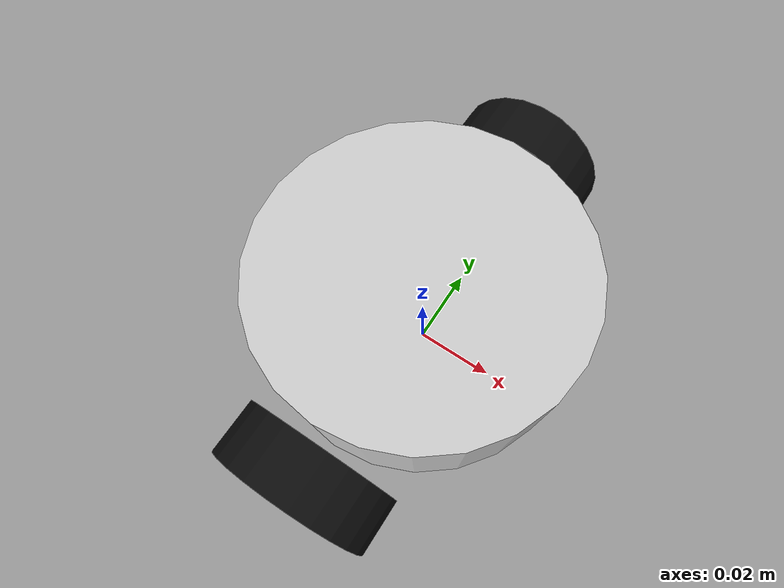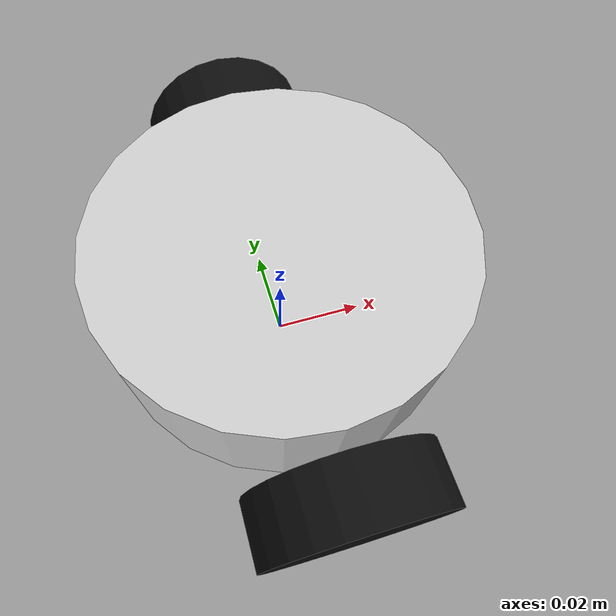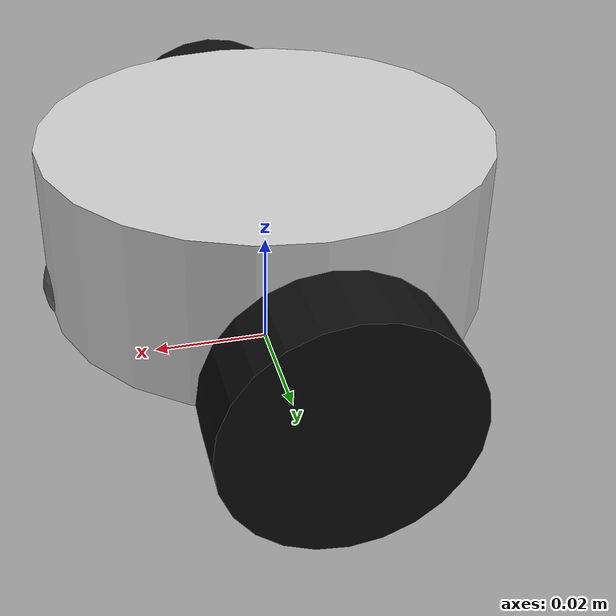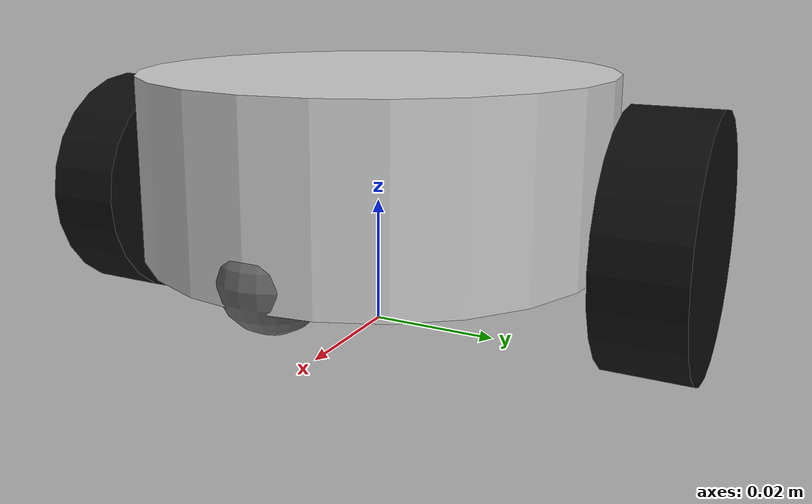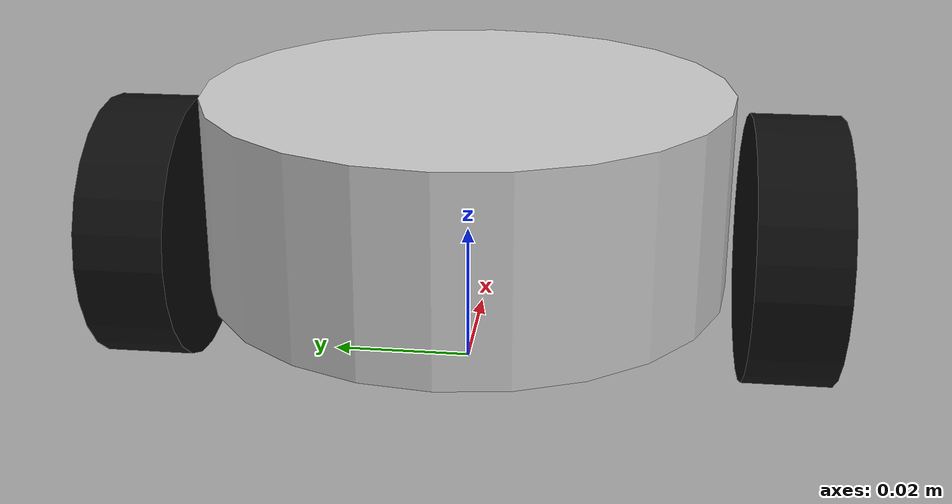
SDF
<?xml version="1.0"?>
<sdf version="1.6">
  <model name="mini_educational_robot">

    <!-- ═══════════════════════════════════════════════════════════
         BASE CHASSIS
    ═══════════════════════════════════════════════════════════ -->
    <link name="base_link">
      <pose>0 0 0.027 0 0 0</pose>

      <inertial>
        <mass>0.175</mass>
        <inertia>
          <ixx>0.000073</ixx>
          <ixy>0</ixy>
          <ixz>0</ixz>
          <iyy>0.000073</iyy>
          <iyz>0</iyz>
          <izz>0.000120</izz>
        </inertia>
      </inertial>

      <collision name="chassis_collision">
        <geometry>
          <cylinder>
            <radius>0.037</radius>
            <length>0.028</length>
          </cylinder>
        </geometry>
      </collision>

      <visual name="chassis_visual">
        <geometry>
          <cylinder>
            <radius>0.037</radius>
            <length>0.028</length>
          </cylinder>
        </geometry>
        <material>
          <ambient>0.85 0.85 0.85 1</ambient>
          <diffuse>0.80 0.80 0.80 1</diffuse>
          <specular>0.2 0.2 0.2 1</specular>
        </material>
      </visual>

      <!-- Front caster sphere -->
      <collision name="caster_collision">
        <pose>0.030 0 -0.011 0 0 0</pose>
        <geometry>
          <sphere><radius>0.008</radius></sphere>
        </geometry>
        <surface>
          <friction>
            <ode><mu>0</mu><mu2>0</mu2></ode>
          </friction>
        </surface>
      </collision>
      <visual name="caster_visual">
        <pose>0.030 0 -0.011 0 0 0</pose>
        <geometry>
          <sphere><radius>0.008</radius></sphere>
        </geometry>
        <material>
          <ambient>0.4 0.4 0.4 1</ambient>
          <diffuse>0.4 0.4 0.4 1</diffuse>
        </material>
      </visual>

      <sensor name="ps0" type="ray">
        <pose>0.035 -0.020 0 0 0 -0.5236</pose>
        <ray>
          <scan><horizontal><samples>1</samples><min_angle>0</min_angle><max_angle>0</max_angle></horizontal></scan>
          <range><min>0.005</min><max>0.20</max><resolution>0.001</resolution></range>
        </ray>
        <always_on>1</always_on>
        <update_rate>10</update_rate>
      </sensor>

      <sensor name="ps1" type="ray">
        <pose>0 -0.040 0 0 0 -1.5708</pose>
        <ray>
          <scan><horizontal><samples>1</samples><min_angle>0</min_angle><max_angle>0</max_angle></horizontal></scan>
          <range><min>0.005</min><max>0.20</max><resolution>0.001</resolution></range>
        </ray>
        <always_on>1</always_on>
        <update_rate>10</update_rate>
      </sensor>

      <sensor name="ps2" type="ray">
        <pose>-0.035 -0.020 0 0 0 -2.6180</pose>
        <ray>
          <scan><horizontal><samples>1</samples><min_angle>0</min_angle><max_angle>0</max_angle></horizontal></scan>
          <range><min>0.005</min><max>0.20</max><resolution>0.001</resolution></range>
        </ray>
        <always_on>1</always_on>
        <update_rate>10</update_rate>
      </sensor>

      <sensor name="ps3" type="ray">
        <pose>-0.035 0.020 0 0 0 2.6180</pose>
        <ray>
          <scan><horizontal><samples>1</samples><min_angle>0</min_angle><max_angle>0</max_angle></horizontal></scan>
          <range><min>0.005</min><max>0.20</max><resolution>0.001</resolution></range>
        </ray>
        <always_on>1</always_on>
        <update_rate>10</update_rate>
      </sensor>

      <sensor name="ps4" type="ray">
        <pose>0 0.040 0 0 0 1.5708</pose>
        <ray>
          <scan><horizontal><samples>1</samples><min_angle>0</min_angle><max_angle>0</max_angle></horizontal></scan>
          <range><min>0.005</min><max>0.20</max><resolution>0.001</resolution></range>
        </ray>
        <always_on>1</always_on>
        <update_rate>10</update_rate>
      </sensor>

      <sensor name="ps5" type="ray">
        <pose>0.035 0.020 0 0 0 0.5236</pose>
        <ray>
          <scan><horizontal><samples>1</samples><min_angle>0</min_angle><max_angle>0</max_angle></horizontal></scan>
          <range><min>0.005</min><max>0.20</max><resolution>0.001</resolution></range>
        </ray>
        <always_on>1</always_on>
        <update_rate>10</update_rate>
      </sensor>

      <sensor name="ps6" type="ray">
        <pose>0.040 0 0 0 0 0</pose>
        <ray>
          <scan><horizontal><samples>1</samples><min_angle>0</min_angle><max_angle>0</max_angle></horizontal></scan>
          <range><min>0.005</min><max>0.20</max><resolution>0.001</resolution></range>
        </ray>
        <always_on>1</always_on>
        <update_rate>10</update_rate>
      </sensor>

      <sensor name="ps7" type="ray">
        <pose>0.038 0.010 0 0 0 0.2618</pose>
        <ray>
          <scan><horizontal><samples>1</samples><min_angle>0</min_angle><max_angle>0</max_angle></horizontal></scan>
          <range><min>0.005</min><max>0.20</max><resolution>0.001</resolution></range>
        </ray>
        <always_on>1</always_on>
        <update_rate>10</update_rate>
      </sensor>

      <!-- ─── Line sensors (ls0–ls2) — downward facing ────────── -->
      <sensor name="ls0" type="ray">
        <pose>0.030 -0.010 -0.013 0 1.5708 0</pose>
        <ray>
          <scan><horizontal><samples>1</samples><min_angle>0</min_angle><max_angle>0</max_angle></horizontal></scan>
          <range><min>0.001</min><max>0.05</max><resolution>0.001</resolution></range>
        </ray>
        <always_on>1</always_on>
        <update_rate>10</update_rate>
      </sensor>

      <sensor name="ls1" type="ray">
        <pose>0.030 0 -0.013 0 1.5708 0</pose>
        <ray>
          <scan><horizontal><samples>1</samples><min_angle>0</min_angle><max_angle>0</max_angle></horizontal></scan>
          <range><min>0.001</min><max>0.05</max><resolution>0.001</resolution></range>
        </ray>
        <always_on>1</always_on>
        <update_rate>10</update_rate>
      </sensor>

      <sensor name="ls2" type="ray">
        <pose>0.030 0.010 -0.013 0 1.5708 0</pose>
        <ray>
          <scan><horizontal><samples>1</samples><min_angle>0</min_angle><max_angle>0</max_angle></horizontal></scan>
          <range><min>0.001</min><max>0.05</max><resolution>0.001</resolution></range>
        </ray>
        <always_on>1</always_on>
        <update_rate>10</update_rate>
      </sensor>
    </link>

    <link name="left_wheel">
      <pose>0 0.0455 0.019 0 1.5708 1.5708</pose>
      <inertial>
        <mass>0.010</mass>
        <inertia>
          <ixx>0.0000009</ixx>
          <ixy>0</ixy>
          <ixz>0</ixz>
          <iyy>0.0000009</iyy>
          <iyz>0</iyz>
          <izz>0.0000018</izz>
        </inertia>
      </inertial>
      <collision name="collision">
        <geometry>
          <cylinder><radius>0.019</radius><length>0.0125</length></cylinder>
        </geometry>
        <surface>
          <friction>
            <ode><mu>10</mu><mu2>10</mu2></ode>
          </friction>
        </surface>
      </collision>
      <visual name="visual">
        <geometry>
          <cylinder><radius>0.019</radius><length>0.0125</length></cylinder>
        </geometry>
        <material>
          <ambient>0.05 0.05 0.05 1</ambient>
          <diffuse>0.05 0.05 0.05 1</diffuse>
        </material>
      </visual>
    </link>

    <!-- ═══════════════════════════════════════════════════════════
         RIGHT WHEEL  (y = -0.0455 m)
    ═══════════════════════════════════════════════════════════ -->
    <link name="right_wheel">
      <pose>0 -0.0455 0.019 0 1.5708 1.5708</pose>
      <inertial>
        <mass>0.010</mass>
        <inertia>
          <ixx>0.0000009</ixx>
          <ixy>0</ixy>
          <ixz>0</ixz>
          <iyy>0.0000009</iyy>
          <iyz>0</iyz>
          <izz>0.0000018</izz>
        </inertia>
      </inertial>
      <collision name="collision">
        <geometry>
          <cylinder><radius>0.019</radius><length>0.0125</length></cylinder>
        </geometry>
        <surface>
          <friction>
            <ode><mu>10</mu><mu2>10</mu2></ode>
          </friction>
        </surface>
      </collision>
      <visual name="visual">
        <geometry>
          <cylinder><radius>0.019</radius><length>0.0125</length></cylinder>
        </geometry>
        <material>
          <ambient>0.05 0.05 0.05 1</ambient>
          <diffuse>0.05 0.05 0.05 1</diffuse>
        </material>
      </visual>
    </link>

    <!-- ═══════════════════════════════════════════════════════════
         JOINTS
    ═══════════════════════════════════════════════════════════ -->
    <joint name="left_wheel_joint" type="revolute">
      <parent>base_link</parent>
      <child>left_wheel</child>
      <axis>
        <xyz>0 0 1</xyz>
        <limit><lower>-1e+16</lower><upper>1e+16</upper></limit>
        <dynamics><friction>0.05</friction><damping>0.05</damping></dynamics>
      </axis>
    </joint>

    <joint name="right_wheel_joint" type="revolute">
      <parent>base_link</parent>
      <child>right_wheel</child>
      <axis>
        <xyz>0 0 1</xyz>
        <limit><lower>-1e+16</lower><upper>1e+16</upper></limit>
        <dynamics><friction>0.05</friction><damping>0.05</damping></dynamics>
      </axis>
    </joint>

    <!-- ═══════════════════════════════════════════════════════════
         GAZEBO PLUGINS
    ═══════════════════════════════════════════════════════════ -->
    <plugin name="diff_drive" filename="libgazebo_ros_diff_drive.so">
      <ros>
        <namespace>/mini_educational_robot</namespace>
        <remapping>cmd_vel:=cmd_vel</remapping>
        <remapping>odom:=odom</remapping>
      </ros>
      <left_joint>left_wheel_joint</left_joint>
      <right_joint>right_wheel_joint</right_joint>
      <wheel_separation>0.091</wheel_separation>
      <wheel_diameter>0.038</wheel_diameter>
      <max_wheel_torque>0.20</max_wheel_torque>
      <max_wheel_acceleration>2.0</max_wheel_acceleration>
      <publish_odom>true</publish_odom>
      <publish_odom_tf>true</publish_odom_tf>
      <publish_wheel_tf>false</publish_wheel_tf>
      <odometry_frame>odom</odometry_frame>
      <robot_base_frame>base_link</robot_base_frame>
    </plugin>

    <plugin name="joint_state_publisher" filename="libgazebo_ros_joint_state_publisher.so">
      <ros>
        <namespace>/mini_educational_robot</namespace>
        <remapping>~/out:=joint_states</remapping>
      </ros>
      <update_rate>30</update_rate>
      <joint_name>left_wheel_joint</joint_name>
      <joint_name>right_wheel_joint</joint_name>
    </plugin>

  </model>
</sdf>
